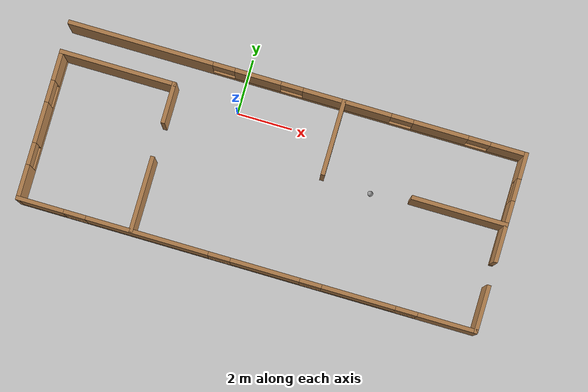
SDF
<sdf version="1.6">
 <world name="default">
  <light name="sun" type="directional">
   <pose>0 0 10 0 -0 0</pose>
   <diffuse>0.8 0.8 0.8 1</diffuse>
   <specular>0.2 0.2 0.2 1</specular>
   <attenuation>
    <range>1000</range>
    <constant>0.9</constant>
    <linear>0.01</linear>
    <quadratic>0.001</quadratic>
   </attenuation>
   <direction>-0.5 0.1 -0.9</direction>
   <spot><inner_angle>0</inner_angle><outer_angle>0</outer_angle><falloff>0</falloff></spot>
  </light>
  <model name="ground_plane">
   <static>1</static>
   <link name="link">
    <collision name="collision">
     <geometry><plane><normal>0 0 1</normal><size>100 100</size></plane></geometry>
     <surface>
      <contact><collide_bitmask>65535</collide_bitmask></contact>
      <friction><ode><mu>100</mu><mu2>50</mu2></ode></friction>
     </surface>
    </collision>
    <visual name="visual">
     <cast_shadows>0</cast_shadows>
     <geometry><plane><normal>0 0 1</normal><size>100 100</size></plane></geometry>
     <material>
      <script><uri>file://media/materials/scripts/gazebo.material</uri><name>Gazebo/Grey</name></script>
     </material>
    </visual>
   </link>
  </model>
  <gravity>0 0 -9.8</gravity>
  <magnetic_field>6e-06 2.3e-05 -4.2e-05</magnetic_field>
  <atmosphere type="adiabatic"/>
  <physics type="ode">
   <max_step_size>0.001</max_step_size>
   <real_time_factor>1</real_time_factor>
   <real_time_update_rate>1000</real_time_update_rate>
  </physics>
  <scene><ambient>0.4 0.4 0.4 1</ambient><background>0.7 0.7 0.7 1</background><shadows>1</shadows></scene>
  <audio><device>default</device></audio>
  <spherical_coordinates>
   <surface_model>EARTH_WGS84</surface_model>
   <latitude_deg>0</latitude_deg>
   <longitude_deg>0</longitude_deg>
   <elevation>0</elevation>
   <heading_deg>0</heading_deg>
  </spherical_coordinates>
  <model name="wooden_house">
   <pose>1.86962 -1.99743 0 0 -0 0</pose>
   <link name="Wall_0">
    <pose>-0.003977 3.21059 0 0 -0 0</pose>
    <visual name="Wall_0_Visual_0">
     <pose>-5.73149 0 1.25 0 -0 0</pose>
     <geometry><box><size>5.28703 0.15 2.5</size></box></geometry>
     <material>
      <script><uri>file://media/materials/scripts/gazebo.material</uri><name>Gazebo/Wood</name></script>
      <ambient>1 1 1 1</ambient>
     </material>
     <meta><layer>0</layer></meta>
    </visual>
    <collision name="Wall_0_Collision_0">
     <geometry><box><size>5.28703 0.15 2.5</size></box></geometry>
     <pose>-5.73149 0 1.25 0 -0 0</pose>
    </collision>
    <visual name="Wall_0_Visual_1">
     <pose>2.64351 0 0.25 0 -0 0</pose>
     <geometry><box><size>11.463 0.15 0.5</size></box></geometry>
     <material>
      <script><uri>file://media/materials/scripts/gazebo.material</uri><name>Gazebo/Wood</name></script>
      <ambient>1 1 1 1</ambient>
     </material>
     <meta><layer>0</layer></meta>
    </visual>
    <collision name="Wall_0_Collision_1">
     <geometry><box><size>11.463 0.15 0.5</size></box></geometry>
     <pose>2.64351 0 0.25 0 -0 0</pose>
    </collision>
    <visual name="Wall_0_Visual_2">
     <pose>-1.44846 0 1.5 0 -0 0</pose>
     <geometry><box><size>1.67903 0.15 2</size></box></geometry>
     <material>
      <script><uri>file://media/materials/scripts/gazebo.material</uri><name>Gazebo/Wood</name></script>
      <ambient>1 1 1 1</ambient>
     </material>
     <meta><layer>0</layer></meta>
    </visual>
    <collision name="Wall_0_Collision_2">
     <geometry><box><size>1.67903 0.15 2</size></box></geometry>
     <pose>-1.44846 0 1.5 0 -0 0</pose>
    </collision>
    <visual name="Wall_0_Visual_3">
     <pose>1.79861 0 1.5 0 -0 0</pose>
     <geometry><box><size>3.21511 0.15 2</size></box></geometry>
     <material>
      <script><uri>file://media/materials/scripts/gazebo.material</uri><name>Gazebo/Wood</name></script>
      <ambient>1 1 1 1</ambient>
     </material>
     <meta><layer>0</layer></meta>
    </visual>
    <collision name="Wall_0_Collision_3">
     <geometry><box><size>3.21511 0.15 2</size></box></geometry>
     <pose>1.79861 0 1.5 0 -0 0</pose>
    </collision>
    <visual name="Wall_0_Visual_4">
     <pose>5.20537 0 1.5 0 -0 0</pose>
     <geometry><box><size>1.99841 0.15 2</size></box></geometry>
     <material>
      <script><uri>file://media/materials/scripts/gazebo.material</uri><name>Gazebo/Wood</name></script>
      <ambient>1 1 1 1</ambient>
     </material>
     <meta><layer>0</layer></meta>
    </visual>
    <collision name="Wall_0_Collision_4">
     <geometry><box><size>1.99841 0.15 2</size></box></geometry>
     <pose>5.20537 0 1.5 0 -0 0</pose>
    </collision>
    <visual name="Wall_0_Visual_5">
     <pose>7.68979 0 1.5 0 -0 0</pose>
     <geometry><box><size>1.37043 0.15 2</size></box></geometry>
     <material>
      <script><uri>file://media/materials/scripts/gazebo.material</uri><name>Gazebo/Wood</name></script>
      <ambient>1 1 1 1</ambient>
     </material>
     <meta><layer>0</layer></meta>
    </visual>
    <collision name="Wall_0_Collision_5">
     <geometry><box><size>1.37043 0.15 2</size></box></geometry>
     <pose>7.68979 0 1.5 0 -0 0</pose>
    </collision>
    <visual name="Wall_0_Visual_6">
     <pose>-2.68797 0 1.9 0 -0 0</pose>
     <geometry><box><size>0.8 0.15 1.2</size></box></geometry>
     <material>
      <script><uri>file://media/materials/scripts/gazebo.material</uri><name>Gazebo/Wood</name></script>
      <ambient>1 1 1 1</ambient>
     </material>
     <meta><layer>0</layer></meta>
    </visual>
    <collision name="Wall_0_Collision_6">
     <geometry><box><size>0.8 0.15 1.2</size></box></geometry>
     <pose>-2.68797 0 1.9 0 -0 0</pose>
    </collision>
    <visual name="Wall_0_Visual_7">
     <pose>-0.208945 0 1.9 0 -0 0</pose>
     <geometry><box><size>0.8 0.15 1.2</size></box></geometry>
     <material>
      <script><uri>file://media/materials/scripts/gazebo.material</uri><name>Gazebo/Wood</name></script>
      <ambient>1 1 1 1</ambient>
     </material>
     <meta><layer>0</layer></meta>
    </visual>
    <collision name="Wall_0_Collision_7">
     <geometry><box><size>0.8 0.15 1.2</size></box></geometry>
     <pose>-0.208945 0 1.9 0 -0 0</pose>
    </collision>
    <visual name="Wall_0_Visual_8">
     <pose>3.80617 0 1.9 0 -0 0</pose>
     <geometry><box><size>0.8 0.15 1.2</size></box></geometry>
     <material>
      <script><uri>file://media/materials/scripts/gazebo.material</uri><name>Gazebo/Wood</name></script>
      <ambient>1 1 1 1</ambient>
     </material>
     <meta><layer>0</layer></meta>
    </visual>
    <collision name="Wall_0_Collision_8">
     <geometry><box><size>0.8 0.15 1.2</size></box></geometry>
     <pose>3.80617 0 1.9 0 -0 0</pose>
    </collision>
    <visual name="Wall_0_Visual_9">
     <pose>6.60457 0 1.9 0 -0 0</pose>
     <geometry><box><size>0.8 0.15 1.2</size></box></geometry>
     <material>
      <script><uri>file://media/materials/scripts/gazebo.material</uri><name>Gazebo/Wood</name></script>
      <ambient>1 1 1 1</ambient>
     </material>
     <meta><layer>0</layer></meta>
    </visual>
    <collision name="Wall_0_Collision_9">
     <geometry><box><size>0.8 0.15 1.2</size></box></geometry>
     <pose>6.60457 0 1.9 0 -0 0</pose>
    </collision>
   </link>
   <link name="Wall_1">
    <pose>8.29602 1.28559 0 0 -0 -1.5708</pose>
    <visual name="Wall_1_Visual_0">
     <pose>-1.51613 0 1.25 0 -0 0</pose>
     <geometry><box><size>0.967744 0.15 2.5</size></box></geometry>
     <material>
      <script><uri>file://media/materials/scripts/gazebo.material</uri><name>Gazebo/Wood</name></script>
      <ambient>1 1 1 1</ambient>
     </material>
     <meta><layer>0</layer></meta>
    </visual>
    <collision name="Wall_1_Collision_0">
     <geometry><box><size>0.967744 0.15 2.5</size></box></geometry>
     <pose>-1.51613 0 1.25 0 -0 0</pose>
    </collision>
    <visual name="Wall_1_Visual_1">
     <pose>0.483872 0 0.25 0 -0 0</pose>
     <geometry><box><size>3.03226 0.15 0.5</size></box></geometry>
     <material>
      <script><uri>file://media/materials/scripts/gazebo.material</uri><name>Gazebo/Wood</name></script>
      <ambient>1 1 1 1</ambient>
     </material>
     <meta><layer>0</layer></meta>
    </visual>
    <collision name="Wall_1_Collision_1">
     <geometry><box><size>3.03226 0.15 0.5</size></box></geometry>
     <pose>0.483872 0 0.25 0 -0 0</pose>
    </collision>
    <visual name="Wall_1_Visual_2">
     <pose>0.883872 0 1.5 0 -0 0</pose>
     <geometry><box><size>2.23226 0.15 2</size></box></geometry>
     <material>
      <script><uri>file://media/materials/scripts/gazebo.material</uri><name>Gazebo/Wood</name></script>
      <ambient>1 1 1 1</ambient>
     </material>
     <meta><layer>0</layer></meta>
    </visual>
    <collision name="Wall_1_Collision_2">
     <geometry><box><size>2.23226 0.15 2</size></box></geometry>
     <pose>0.883872 0 1.5 0 -0 0</pose>
    </collision>
    <visual name="Wall_1_Visual_3">
     <pose>-0.632256 0 1.9 0 -0 0</pose>
     <geometry><box><size>0.8 0.15 1.2</size></box></geometry>
     <material>
      <script><uri>file://media/materials/scripts/gazebo.material</uri><name>Gazebo/Wood</name></script>
      <ambient>1 1 1 1</ambient>
     </material>
     <meta><layer>0</layer></meta>
    </visual>
    <collision name="Wall_1_Collision_3">
     <geometry><box><size>0.8 0.15 1.2</size></box></geometry>
     <pose>-0.632256 0 1.9 0 -0 0</pose>
    </collision>
   </link>
   <link name="Wall_11">
    <collision name="Wall_11_Collision">
     <geometry><box><size>3.5 0.15 2.5</size></box></geometry>
     <pose>0 0 1.25 0 -0 0</pose>
    </collision>
    <visual name="Wall_11_Visual">
     <pose>0 0 1.25 0 -0 0</pose>
     <geometry><box><size>3.5 0.15 2.5</size></box></geometry>
     <material>
      <script><uri>file://media/materials/scripts/gazebo.material</uri><name>Gazebo/Wood</name></script>
      <ambient>1 1 1 1</ambient>
     </material>
     <meta><layer>0</layer></meta>
    </visual>
    <pose>6.61377 0.655517 0 0 -0 3.14159</pose>
   </link>
   <link name="Wall_14">
    <collision name="Wall_14_Collision">
     <geometry><box><size>2.75 0.15 2.5</size></box></geometry>
     <pose>0 0 1.25 0 -0 0</pose>
    </collision>
    <visual name="Wall_14_Visual">
     <pose>0 0 1.25 0 -0 0</pose>
     <geometry><box><size>2.75 0.15 2.5</size></box></geometry>
     <material>
      <script><uri>file://media/materials/scripts/gazebo.material</uri><name>Gazebo/Wood</name></script>
      <ambient>1 1 1 1</ambient>
     </material>
     <meta><layer>0</layer></meta>
    </visual>
    <pose>1.67296 1.91059 0 0 -0 -1.5708</pose>
   </link>
   <link name="Wall_3">
    <collision name="Wall_3_Collision">
     <geometry><box><size>1.75 0.15 2.5</size></box></geometry>
     <pose>0 0 1.25 0 -0 0</pose>
    </collision>
    <visual name="Wall_3_Visual">
     <pose>0 0 1.25 0 -0 0</pose>
     <geometry><box><size>1.75 0.15 2.5</size></box></geometry>
     <material>
      <script><uri>file://media/materials/scripts/gazebo.material</uri><name>Gazebo/Wood</name></script>
      <ambient>1 1 1 1</ambient>
     </material>
     <meta><layer>0</layer></meta>
    </visual>
    <pose>8.30398 -2.41059 0 0 -0 -1.5708</pose>
   </link>
   <link name="Wall_4">
    <pose>0.003978 -3.21059 0 0 -0 3.14159</pose>
    <visual name="Wall_4_Visual_0">
     <pose>-7.28278 0 1.25 0 -0 0</pose>
     <geometry><box><size>2.18444 0.15 2.5</size></box></geometry>
     <material>
      <script><uri>file://media/materials/scripts/gazebo.material</uri><name>Gazebo/Wood</name></script>
      <ambient>1 1 1 1</ambient>
     </material>
     <meta><layer>0</layer></meta>
    </visual>
    <collision name="Wall_4_Collision_0">
     <geometry><box><size>2.18444 0.15 2.5</size></box></geometry>
     <pose>-7.28278 0 1.25 0 -0 0</pose>
    </collision>
    <visual name="Wall_4_Visual_1">
     <pose>1.09222 0 0.25 0 -0 0</pose>
     <geometry><box><size>14.5656 0.15 0.5</size></box></geometry>
     <material>
      <script><uri>file://media/materials/scripts/gazebo.material</uri><name>Gazebo/Wood</name></script>
      <ambient>1 1 1 1</ambient>
     </material>
     <meta><layer>0</layer></meta>
    </visual>
    <collision name="Wall_4_Collision_1">
     <geometry><box><size>14.5656 0.15 0.5</size></box></geometry>
     <pose>1.09222 0 0.25 0 -0 0</pose>
    </collision>
    <visual name="Wall_4_Visual_2">
     <pose>-4.05676 0 1.5 0 -0 0</pose>
     <geometry><box><size>2.66759 0.15 2</size></box></geometry>
     <material>
      <script><uri>file://media/materials/scripts/gazebo.material</uri><name>Gazebo/Wood</name></script>
      <ambient>1 1 1 1</ambient>
     </material>
     <meta><layer>0</layer></meta>
    </visual>
    <collision name="Wall_4_Collision_2">
     <geometry><box><size>2.66759 0.15 2</size></box></geometry>
     <pose>-4.05676 0 1.5 0 -0 0</pose>
    </collision>
    <visual name="Wall_4_Visual_3">
     <pose>-0.665208 0 1.5 0 -0 0</pose>
     <geometry><box><size>2.51551 0.15 2</size></box></geometry>
     <material>
      <script><uri>file://media/materials/scripts/gazebo.material</uri><name>Gazebo/Wood</name></script>
      <ambient>1 1 1 1</ambient>
     </material>
     <meta><layer>0</layer></meta>
    </visual>
    <collision name="Wall_4_Collision_3">
     <geometry><box><size>2.51551 0.15 2</size></box></geometry>
     <pose>-0.665208 0 1.5 0 -0 0</pose>
    </collision>
    <visual name="Wall_4_Visual_4">
     <pose>3.61606 0 1.5 0 -0 0</pose>
     <geometry><box><size>4.44702 0.15 2</size></box></geometry>
     <material>
      <script><uri>file://media/materials/scripts/gazebo.material</uri><name>Gazebo/Wood</name></script>
      <ambient>1 1 1 1</ambient>
     </material>
     <meta><layer>0</layer></meta>
    </visual>
    <collision name="Wall_4_Collision_4">
     <geometry><box><size>4.44702 0.15 2</size></box></geometry>
     <pose>3.61606 0 1.5 0 -0 0</pose>
    </collision>
    <visual name="Wall_4_Visual_5">
     <pose>7.50728 0 1.5 0 -0 0</pose>
     <geometry><box><size>1.73544 0.15 2</size></box></geometry>
     <material>
      <script><uri>file://media/materials/scripts/gazebo.material</uri><name>Gazebo/Wood</name></script>
      <ambient>1 1 1 1</ambient>
     </material>
     <meta><layer>0</layer></meta>
    </visual>
    <collision name="Wall_4_Collision_5">
     <geometry><box><size>1.73544 0.15 2</size></box></geometry>
     <pose>7.50728 0 1.5 0 -0 0</pose>
    </collision>
    <visual name="Wall_4_Visual_6">
     <pose>-5.79056 0 1.9 0 -0 0</pose>
     <geometry><box><size>0.8 0.15 1.2</size></box></geometry>
     <material>
      <script><uri>file://media/materials/scripts/gazebo.material</uri><name>Gazebo/Wood</name></script>
      <ambient>1 1 1 1</ambient>
     </material>
     <meta><layer>0</layer></meta>
    </visual>
    <collision name="Wall_4_Collision_6">
     <geometry><box><size>0.8 0.15 1.2</size></box></geometry>
     <pose>-5.79056 0 1.9 0 -0 0</pose>
    </collision>
    <visual name="Wall_4_Visual_7">
     <pose>-2.32296 0 1.9 0 -0 0</pose>
     <geometry><box><size>0.8 0.15 1.2</size></box></geometry>
     <material>
      <script><uri>file://media/materials/scripts/gazebo.material</uri><name>Gazebo/Wood</name></script>
      <ambient>1 1 1 1</ambient>
     </material>
     <meta><layer>0</layer></meta>
    </visual>
    <collision name="Wall_4_Collision_7">
     <geometry><box><size>0.8 0.15 1.2</size></box></geometry>
     <pose>-2.32296 0 1.9 0 -0 0</pose>
    </collision>
    <visual name="Wall_4_Visual_8">
     <pose>0.992546 0 1.9 0 -0 0</pose>
     <geometry><box><size>0.8 0.15 1.2</size></box></geometry>
     <material>
      <script><uri>file://media/materials/scripts/gazebo.material</uri><name>Gazebo/Wood</name></script>
      <ambient>1 1 1 1</ambient>
     </material>
     <meta><layer>0</layer></meta>
    </visual>
    <collision name="Wall_4_Collision_8">
     <geometry><box><size>0.8 0.15 1.2</size></box></geometry>
     <pose>0.992546 0 1.9 0 -0 0</pose>
    </collision>
    <visual name="Wall_4_Visual_9">
     <pose>6.23956 0 1.9 0 -0 0</pose>
     <geometry><box><size>0.8 0.15 1.2</size></box></geometry>
     <material>
      <script><uri>file://media/materials/scripts/gazebo.material</uri><name>Gazebo/Wood</name></script>
      <ambient>1 1 1 1</ambient>
     </material>
     <meta><layer>0</layer></meta>
    </visual>
    <collision name="Wall_4_Collision_9">
     <geometry><box><size>0.8 0.15 1.2</size></box></geometry>
     <pose>6.23956 0 1.9 0 -0 0</pose>
    </collision>
   </link>
   <link name="Wall_5">
    <pose>-8.29602 -0.535587 0 0 -0 1.5708</pose>
    <visual name="Wall_5_Visual_0">
     <pose>-2.1049 0 1.25 0 -0 0</pose>
     <geometry><box><size>1.29021 0.15 2.5</size></box></geometry>
     <material>
      <script><uri>file://media/materials/scripts/gazebo.material</uri><name>Gazebo/Wood</name></script>
      <ambient>1 1 1 1</ambient>
     </material>
     <meta><layer>0</layer></meta>
    </visual>
    <collision name="Wall_5_Collision_0">
     <geometry><box><size>1.29021 0.15 2.5</size></box></geometry>
     <pose>-2.1049 0 1.25 0 -0 0</pose>
    </collision>
    <visual name="Wall_5_Visual_1">
     <pose>0.645104 0 0.25 0 -0 0</pose>
     <geometry><box><size>4.20979 0.15 0.5</size></box></geometry>
     <material>
      <script><uri>file://media/materials/scripts/gazebo.material</uri><name>Gazebo/Wood</name></script>
      <ambient>1 1 1 1</ambient>
     </material>
     <meta><layer>0</layer></meta>
    </visual>
    <collision name="Wall_5_Collision_1">
     <geometry><box><size>4.20979 0.15 0.5</size></box></geometry>
     <pose>0.645104 0 0.25 0 -0 0</pose>
    </collision>
    <visual name="Wall_5_Visual_2">
     <pose>0.080865 0 1.5 0 -0 0</pose>
     <geometry><box><size>1.48131 0.15 2</size></box></geometry>
     <material>
      <script><uri>file://media/materials/scripts/gazebo.material</uri><name>Gazebo/Wood</name></script>
      <ambient>1 1 1 1</ambient>
     </material>
     <meta><layer>0</layer></meta>
    </visual>
    <collision name="Wall_5_Collision_2">
     <geometry><box><size>1.48131 0.15 2</size></box></geometry>
     <pose>0.080865 0 1.5 0 -0 0</pose>
    </collision>
    <visual name="Wall_5_Visual_3">
     <pose>2.18576 0 1.5 0 -0 0</pose>
     <geometry><box><size>1.12848 0.15 2</size></box></geometry>
     <material>
      <script><uri>file://media/materials/scripts/gazebo.material</uri><name>Gazebo/Wood</name></script>
      <ambient>1 1 1 1</ambient>
     </material>
     <meta><layer>0</layer></meta>
    </visual>
    <collision name="Wall_5_Collision_3">
     <geometry><box><size>1.12848 0.15 2</size></box></geometry>
     <pose>2.18576 0 1.5 0 -0 0</pose>
    </collision>
    <visual name="Wall_5_Visual_4">
     <pose>-1.05979 0 1.9 0 -0 0</pose>
     <geometry><box><size>0.8 0.15 1.2</size></box></geometry>
     <material>
      <script><uri>file://media/materials/scripts/gazebo.material</uri><name>Gazebo/Wood</name></script>
      <ambient>1 1 1 1</ambient>
     </material>
     <meta><layer>0</layer></meta>
    </visual>
    <collision name="Wall_5_Collision_4">
     <geometry><box><size>0.8 0.15 1.2</size></box></geometry>
     <pose>-1.05979 0 1.9 0 -0 0</pose>
    </collision>
    <visual name="Wall_5_Visual_5">
     <pose>1.22152 0 1.9 0 -0 0</pose>
     <geometry><box><size>0.8 0.15 1.2</size></box></geometry>
     <material>
      <script><uri>file://media/materials/scripts/gazebo.material</uri><name>Gazebo/Wood</name></script>
      <ambient>1 1 1 1</ambient>
     </material>
     <meta><layer>0</layer></meta>
    </visual>
    <collision name="Wall_5_Collision_5">
     <geometry><box><size>0.8 0.15 1.2</size></box></geometry>
     <pose>1.22152 0 1.9 0 -0 0</pose>
    </collision>
   </link>
   <link name="Wall_6">
    <collision name="Wall_6_Collision">
     <geometry><box><size>4.25 0.15 2.5</size></box></geometry>
     <pose>0 0 1.25 0 -0 0</pose>
    </collision>
    <visual name="Wall_6_Visual">
     <pose>0 0 1.25 0 -0 0</pose>
     <geometry><box><size>4.25 0.15 2.5</size></box></geometry>
     <material>
      <script><uri>file://media/materials/scripts/gazebo.material</uri><name>Gazebo/Wood</name></script>
      <ambient>1 1 1 1</ambient>
     </material>
     <meta><layer>0</layer></meta>
    </visual>
    <pose>-6.24602 2.13941 0 0 -0 0</pose>
   </link>
   <link name="Wall_7">
    <collision name="Wall_7_Collision">
     <geometry><box><size>1.5 0.15 2.5</size></box></geometry>
     <pose>0 0 1.25 0 -0 0</pose>
    </collision>
    <visual name="Wall_7_Visual">
     <pose>0 0 1.25 0 -0 0</pose>
     <geometry><box><size>1.5 0.15 2.5</size></box></geometry>
     <material>
      <script><uri>file://media/materials/scripts/gazebo.material</uri><name>Gazebo/Wood</name></script>
      <ambient>1 1 1 1</ambient>
     </material>
     <meta><layer>0</layer></meta>
    </visual>
    <pose>-4.19602 1.46441 0 0 -0 -1.5708</pose>
   </link>
   <link name="Wall_9">
    <collision name="Wall_9_Collision">
     <geometry><box><size>2.75 0.15 2.5</size></box></geometry>
     <pose>0 0 1.25 0 -0 0</pose>
    </collision>
    <visual name="Wall_9_Visual">
     <pose>0 0 1.25 0 -0 0</pose>
     <geometry><box><size>2.75 0.15 2.5</size></box></geometry>
     <material>
      <script><uri>file://media/materials/scripts/gazebo.material</uri><name>Gazebo/Wood</name></script>
      <ambient>1 1 1 1</ambient>
     </material>
     <meta><layer>0</layer></meta>
    </visual>
    <pose>-4.19761 -1.87709 0 0 -0 1.5708</pose>
   </link>
   <static>1</static>
  </model>
  <model name="my_new_ball">
   <model name="my_ball">
    <link name="link_0">
     <inertial>
      <mass>1</mass>
      <inertia><ixx>0.1</ixx><ixy>0</ixy><ixz>0</ixz><iyy>0.1</iyy><iyz>0</iyz><izz>0.1</izz></inertia>
     </inertial>
     <visual name="visual">
      <geometry><sphere><radius>0.1</radius></sphere></geometry>
      <material>
       <lighting>1</lighting>
       <script><uri>file://media/materials/scripts/gazebo.material</uri><name>Gazebo/Grey</name></script>
       <shader type="pixel"><normal_map>__default__</normal_map></shader>
       <ambient>1 1 1 1</ambient>
       <diffuse>1 1 1 1</diffuse>
       <specular>1 1 1 1</specular>
       <emissive>1 1 1 1</emissive>
      </material>
     </visual>
     <collision name="collision">
      <geometry><sphere><radius>0.1</radius></sphere></geometry>
      <surface>
       <friction>
        <ode><mu>1</mu><mu2>1</mu2><fdir1>0 0 0</fdir1><slip1>0</slip1><slip2>0</slip2></ode>
        <torsional>
         <coefficient>1</coefficient>
         <patch_radius>0</patch_radius>
         <surface_radius>0</surface_radius>
         <use_patch_radius>1</use_patch_radius>
         <ode><slip>0</slip></ode>
        </torsional>
       </friction>
       <bounce><restitution_coefficient>0</restitution_coefficient><threshold>1e+06</threshold></bounce>
       <contact>
        <collide_without_contact>0</collide_without_contact>
        <collide_without_contact_bitmask>1</collide_without_contact_bitmask>
        <collide_bitmask>1</collide_bitmask>
        <ode>
         <soft_cfm>0</soft_cfm>
         <soft_erp>0.2</soft_erp>
         <kp>1e+13</kp>
         <kd>1</kd>
         <max_vel>0.01</max_vel>
         <min_depth>0</min_depth>
        </ode>
        <bullet>
         <split_impulse>1</split_impulse>
         <split_impulse_penetration_threshold>-0.01</split_impulse_penetration_threshold>
         <soft_cfm>0</soft_cfm>
         <soft_erp>0.2</soft_erp>
         <kp>1e+13</kp>
         <kd>1</kd>
        </bullet>
       </contact>
      </surface>
     </collision>
    </link>
    <static>0</static>
    <pose>-2e-06 -4e-06 0 0 -0 0</pose>
   </model>
   <static>0</static>
   <pose>5.34797 -1.43786 0.100973 0 -0 0</pose>
  </model>
 </world>
</sdf>
